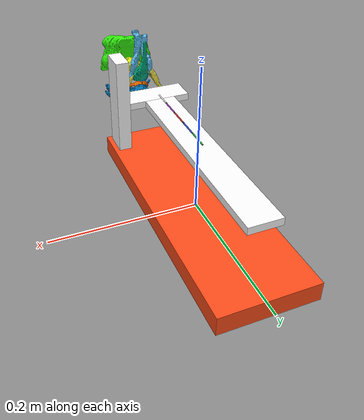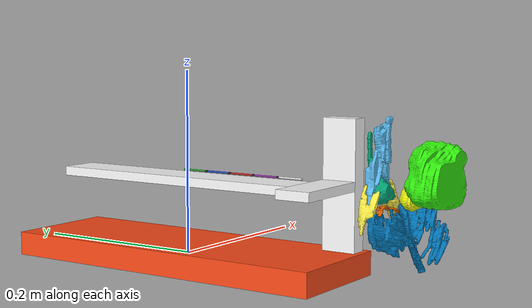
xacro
<?xml version="1.0"?>
<robot xmlns:xacro="http://www.ros.org/wiki/xacro" name="robot">

    <xacro:include filename="inertial_macros.xacro"/>
    <xacro:include filename="gazebo_tags.xacro"/>
    <xacro:include filename="prostate.xacro"/>

<!--  ***** ROBOT ASPECT  *****   -->
    <!-- colors-->
    <material name="white">
        <color rgba="1 1 1 1"/>
    </material>

    <material name="orange">
        <color rgba="1 0.3 0.1 1"/>
    </material>

    <material name="blue">
        <color rgba="0.2 0.2 1 1"/>
    </material>

    <!-- measures -->

    <xacro:property name="base_size_x_half" value="0.0655" />
    <xacro:property name="base_size_y_half" value="0.1905" />
    <xacro:property name="base_size_z" value="0.026" />
    <xacro:property name="link_z_size_x" value="0.019" />
    <xacro:property name="link_z_size_y" value="0.038" />
    <xacro:property name="link_z_size_z" value="0.14" />
    <xacro:property name="link_x_size_x" value="0.092" />
    <xacro:property name="link_x_size_y" value="0.038" />
    <xacro:property name="link_x_size_z" value="0.01" />
    <xacro:property name="link_y_size_x" value="0.045" />
    <xacro:property name="link_y_size_y" value="0.3" />
    <xacro:property name="link_y_size_z" value="0.01" />
    <xacro:property name="x_offset" value="0.007" />
    <xacro:property name="y_offset" value="0.006" />
    <xacro:property name="mass_base" value="0.4" />
    <xacro:property name="mass_x" value="0.3" />
    <xacro:property name="mass_y" value="0.3" />
    <xacro:property name="mass_z" value="0.25" />
    <!-- measures for the needle -->
    <xacro:property name="needle_mass" value="0.006" />
    <xacro:property name="link_qty" value="5"/>
	<xacro:property name="link_length" value="${needle_length/ link_qty}"/>
	<xacro:property name="link_radius" value="${needle_radius}"/>
	<xacro:property name="link_mass" value="needle_mass/link_qty"/>
	<xacro:property name="needle_radius" value="0.001" />
	<xacro:property name="needle_length" value="0.15" />

    <!-- common link for all the elements of the world -->
    <link name="dummy_link"/>

<!--  ***** NEEDLE ROBOT  *****   -->
    <joint name="dummy_joint" type="fixed">
        <parent link="dummy_link"/>
        <child link="base"/>
        <origin xyz="0 0 0" rpy="0 0 0"/>
    </joint>

    <link name="base">
        <visual>
            <geometry>
                <box size="${base_size_x_half * 2} ${base_size_y_half * 2} ${base_size_z}" />
            </geometry>
            <material name="orange" />
        </visual>
        <collision>
            <origin xyz="0 0 0" rpy="0 0 0"/>
            <geometry>
                <box size="${base_size_x_half * 2} ${base_size_y_half * 2} ${base_size_z}"/>
            </geometry>
        </collision>
        <xacro:inertial_box mass="${mass_base}" x="${base_size_x_half * 2}" y="${base_size_y_half * 2}" z="${base_size_z * 2}">
            <origin xyz="0 0 0" rpy="0 0 0"/>
        </xacro:inertial_box>
    </link>
    <joint name="base_joint" type="fixed">
        <parent link="base" />
        <child link="link_z" />
        <origin xyz="${base_size_x_half - link_z_size_x/2 - x_offset} -${base_size_y_half - link_z_size_y/2 - y_offset} 0.0" />
    </joint>

    <link name="link_z">
        <visual>
            <origin xyz="0 0 ${base_size_z/2 + link_z_size_z/2}" rpy="0.0 0.0 0.0"  />
            <geometry>
                <box size="${link_z_size_x} ${link_z_size_y} ${link_z_size_z}" />
            </geometry>
            <material name="white"/>
        </visual>
        <collision>
            <origin xyz="0 0 ${base_size_z/2 + link_z_size_z/2}" rpy="0 0 0"/>
            <geometry>
                <box size="${link_z_size_x} ${link_z_size_y} ${link_z_size_z}"/>
            </geometry>
        </collision>
        <xacro:inertial_box mass="${mass_z}" x="${link_z_size_x}" y="${link_z_size_y}" z="${link_z_size_z}">
            <origin xyz="0 0 ${base_size_z/2 + link_z_size_z/2}" rpy="0 0 0"/>
        </xacro:inertial_box>
    </link>
    <joint name="joint_zx" type="prismatic">
        <origin xyz="0 0 ${base_size_z/2 + link_z_size_z/2}" />
        <parent link="link_z" />
        <child link="link_x" />
        <axis xyz="0 0 1" />
        <limit effort="100" lower="-${base_size_z/2 + link_z_size_z/2 - link_x_size_z}" upper="${base_size_z/2 + link_z_size_z/2 - link_x_size_z}" velocity="0.1"  />
    </joint>

    <link name="link_x">
        <visual>
            <origin xyz="-${link_z_size_x/2 + link_x_size_x/2} 0 0" rpy="0 0 0"  />
            <geometry>
                <box size="${link_x_size_x} ${link_x_size_y} ${link_x_size_z}" />
            </geometry>
            <material name="white"/>
        </visual>
        <collision>
            <origin xyz="-${link_z_size_x/2 + link_x_size_x/2} 0 0" rpy="0 0 0"/>
            <geometry>
                <box size="${link_x_size_x} ${link_x_size_y} ${link_x_size_z}"/>
            </geometry>
        </collision>
        <xacro:inertial_box mass="${mass_x}" x="${link_x_size_x}" y="${link_x_size_y}" z="${link_x_size_z}">
            <origin xyz="-${link_z_size_x/2 + link_x_size_x/2} 0 0" rpy="0 0 0"/>
        </xacro:inertial_box>
    </link>
    <joint name="joint_xy" type="prismatic">
        <parent link="link_x" />
        <child link="link_y" />
        <origin xyz="-${link_z_size_x/2 + link_x_size_x/2}  0 0" rpy="0 0 0" />
        <axis xyz="1 0 0" />
        <limit effort="1000.0" lower="-${link_z_size_x/2 + link_x_size_x/2 - link_z_size_x/2}" upper="${link_z_size_x/2 + link_x_size_x/2 - link_z_size_x/2}" velocity="0.1"  />
    </joint>

    <link name="link_y">
        <visual>
            <origin xyz="0 ${link_y_size_y/2 + link_x_size_y/2}  0" />
            <geometry>
                <box size="${link_y_size_x} ${link_y_size_y} ${link_y_size_z}"  />
            </geometry>
            <material name="white"/>
        </visual>
        <collision>
            <origin xyz="0 ${link_y_size_y/2 + link_x_size_y/2}  0" rpy="0 0 0"/>
            <geometry>
                <box size="${link_y_size_x} ${link_y_size_y} ${link_y_size_z}"/>
            </geometry>
        </collision>
        <xacro:inertial_box mass="${mass_y}" x="${link_y_size_x}" y="${link_y_size_y}" z="${link_y_size_z}">
            <origin xyz="0 ${link_y_size_y/2 + link_x_size_y/2}  0" rpy="0 0 0"/>
        </xacro:inertial_box>
    </link>

	<!-- constuction of the articulated needle -->
	<link name="link_1">
        <visual>
            <geometry>
                <cylinder length="${link_length}" radius="${link_radius}"/>
            </geometry>
            <origin xyz="0 0 0" rpy="0 1.5708 1.5708"/>
        </visual>
        <collision>
            <origin xyz="0 0 0" rpy="0 1.5708 1.5708"/>
            <geometry>
                <cylinder length="${link_length}" radius="${link_radius}"/>
            </geometry>
        </collision>
        <surface>
			<friction>
			  <ode>
			<mu>100000.0</mu>
			<mu2>100000.0</mu2>
			  </ode>
			</friction>
		</surface>
        <xacro:inertial_cylinder mass="${needle_mass/link_qty}" length="${link_length}" radius="${link_radius}">
            <origin xyz="0 0 0" rpy="0 1.5708 1.5708"/>
        </xacro:inertial_cylinder>
    </link>
    <joint name="joint_needle" type="prismatic">
        <parent link="link_y"/>
        <child link="link_1"/>
        <origin xyz="0 0.15 ${link_y_size_z}" rpy="0 0 0"/>
        <axis xyz="0 1 0"/>
        <limit effort="1000" velocity="0.1" lower="-${needle_length}" upper="${needle_length/2}"/>
    </joint>
    <gazebo reference="link_1">
        <kp>1.0</kp>
        <kd>1.0</kd>
        <mu1>1000.0</mu1>
        <mu2>1000.0</mu2>
        <material>Gazebo/Green</material>
        <self_collide>1</self_collide>
    </gazebo>

    <xacro:macro name="needle_link" params="base_name parent_name colour">

        <link name="${base_name}_aux">
            <visual>
			    <geometry>
			        <cylinder length="${link_length * 1/10}" radius="${link_radius}"/>
			    </geometry>
			    <origin xyz="0 0 0" rpy="0 1.5708 1.5708"/>
			</visual>
			<collision>
			    <origin xyz="0 0 0" rpy="0 1.5708 1.5708"/>
			    <geometry>
			        <cylinder length="${link_length}" radius="${link_radius}"/>
			    </geometry>
			</collision>
			<surface>
				<friction>
				  <ode>
				    <mu>100000.0</mu>
				    <mu2>100000.0</mu2>
				  </ode>
				</friction>
			</surface>
			<xacro:inertial_cylinder mass="${needle_mass/link_qty}" length="${link_length}" radius="${link_radius}">
			    <origin xyz="0 0 0" rpy="0 1.5708 1.5708"/>
			</xacro:inertial_cylinder>
		</link>

    	<gazebo reference="${base_name}_aux">
    		<kp>1.0</kp>
            <kd>1.0</kd>
            <mu1>1000.0</mu1>
            <mu2>1000.0</mu2>
            <material>Gazebo/Black</material>
            <self_collide>1</self_collide>
        </gazebo>

        <link name="${base_name}">
     	    <visual>
	        <geometry>
	            <cylinder length="${link_length * 9/10}" radius="${link_radius}"/>
	        </geometry>
	        <origin xyz="0 0 0" rpy="0 1.5708 1.5708"/>
	    </visual>
	    <collision>
	        <origin xyz="0 0 0" rpy="0 1.5708 1.5708"/>
	        <geometry>
	            <cylinder length="${link_length}" radius="${link_radius}"/>
	        </geometry>
	    </collision>
	    <surface>
			<friction>
		      <ode>
		        <mu>100000.0</mu>
		        <mu2>100000.0</mu2>
		      </ode>
			</friction>
		</surface>
	    <xacro:inertial_cylinder mass="${needle_mass/link_qty}" length="${link_length}" radius="${link_radius}">
	        <origin xyz="0 0 0" rpy="0 1.5708 1.5708"/>
	    </xacro:inertial_cylinder>
    	</link>

    	<gazebo reference="${base_name}">
    		<kp>1.0</kp>
            <kd>1.0</kd>
            <mu1>1000.0</mu1>
            <mu2>1000.0</mu2>
            <material>Gazebo/${colour}</material>
            <self_collide>1</self_collide>
        </gazebo>

        <joint name="${base_name}_aux_joint" type="revolute">
            <parent link="${parent_name}"/>
        	<child link="${base_name}_aux"/>
            <origin xyz="0 -${link_length/2} 0" rpy="0 0 0"/>
            <limit lower="-0.04" upper="0.04" effort="100.0" velocity="0.1"/>
            <axis xyz="1 0 0"/>
    	</joint>

        <joint name="${base_name}_joint" type="revolute">
    	    <parent link="${base_name}_aux"/>
        	<child link="${base_name}"/>
            <origin xyz="0 -${link_length/2} 0" rpy="0 0 0"/>
            <limit lower="-0.04" upper="0.04" effort="100.0" velocity="0.1"/>
            <axis xyz="0 1 0"/>
    	</joint>

    	<transmission name="tran${base_name}_aux">
            <type>transmission_interface/SimpleTransmission</type>
            <joint name="${base_name}_aux_joint">
                <hardwareInterface>EffortJointInterface</hardwareInterface>
            </joint>
            <actuator name="motor${base_name}_aux">
                <hardwareInterface>EffortJointInterface</hardwareInterface>
                <mechanicalReduction>1</mechanicalReduction>
            </actuator>
        </transmission>

        <transmission name="tran${base_name}">
            <type>transmission_interface/SimpleTransmission</type>
            <joint name="${base_name}_joint">
                <hardwareInterface>EffortJointInterface</hardwareInterface>
            </joint>
            <actuator name="motor${base_name}">
                <hardwareInterface>EffortJointInterface</hardwareInterface>
                <mechanicalReduction>1</mechanicalReduction>
            </actuator>
        </transmission>

    </xacro:macro>

    <!-- initialisation of the needle-->
    <xacro:needle_link base_name="link_2" parent_name="link_1" colour="Blue"/>
    <xacro:needle_link base_name="link_3" parent_name="link_2" colour="Red"/>
    <xacro:needle_link base_name="link_4" parent_name="link_3" colour="Purple"/>
    <xacro:needle_link base_name="link_5" parent_name="link_4" colour="White"/>

<!--  ***** ROS2 GAZEBO CONTROL PACKAGE  *****   -->
    <ros2_control name="GazeboSystem" type="system">
        <hardware>
            <plugin>gazebo_ros2_control/GazeboSystem</plugin>
        </hardware>
        <joint name="joint_zx">
            <command_interface name="position">
                <param name="min">-${base_size_z/2 + link_z_size_z/2 - link_x_size_z}"</param>
                <param name="max">"${base_size_z/2 + link_z_size_z/2 - link_x_size_z}"</param>
            </command_interface>
            <state_interface name="position"/>
            <state_interface name="velocity"/>
        </joint>
        <joint name="joint_xy">
            <command_interface name="position">
                <param name="min">-${link_z_size_x/2 + link_x_size_x/2 - link_z_size_x/2}</param>
                <param name="max">${link_z_size_x/2 + link_x_size_x/2 - link_z_size_x/2}</param>
            </command_interface>
            <state_interface name="position"/> <!--what I want to broadcast-->
            <state_interface name="velocity"/>
        </joint>
        <joint name="joint_needle">
            <command_interface name="position">
                <param name="min">-${needle_length}</param>
                <param name="max">${needle_length/2}</param>
            </command_interface>
            <state_interface name="position"/>
            <state_interface name="velocity"/>
        </joint>
        <joint name="link_2_aux_joint">
            <command_interface name="position">
                <param name="min">-0.04</param>
                <param name="max">0.04</param>
            </command_interface>
            <state_interface name="position"/>
            <state_interface name="velocity"/>
        </joint>
        <joint name="link_2_joint">
            <command_interface name="position">
                <param name="min">-0.04</param>
                <param name="max">0.04</param>
            </command_interface>
            <state_interface name="position"/>
            <state_interface name="velocity"/>
        </joint>
        <joint name="link_3_aux_joint">
            <command_interface name="position">
                <param name="min">-0.04</param>
                <param name="max">0.04</param>
            </command_interface>
            <state_interface name="position"/>
            <state_interface name="velocity"/>
        </joint>
        <joint name="link_3_joint">
            <command_interface name="position">
                <param name="min">-0.04</param>
                <param name="max">0.04</param>
            </command_interface>
            <state_interface name="position"/>
            <state_interface name="velocity"/>
        </joint>
        <joint name="link_4_aux_joint">
            <command_interface name="position">
                <param name="min">-0.04</param>
                <param name="max">0.04</param>
            </command_interface>
            <state_interface name="position"/>
            <state_interface name="velocity"/>
        </joint>
        <joint name="link_4_joint">
            <command_interface name="position">
                <param name="min">-0.04</param>
                <param name="max">0.04</param>
            </command_interface>
            <state_interface name="position"/>
            <state_interface name="velocity"/>
        </joint>
        <joint name="link_5_aux_joint">
            <command_interface name="position">
                <param name="min">-0.04</param>
                <param name="max">0.04</param>
            </command_interface>
            <state_interface name="position"/>
            <state_interface name="velocity"/>
        </joint>
        <joint name="link_5_joint">
            <command_interface name="position">
                <param name="min">-0.04</param>
                <param name="max">0.04</param>
            </command_interface>
            <state_interface name="position"/>
            <state_interface name="velocity"/>
        </joint>
    </ros2_control>

    <gazebo>
        <plugin filename="libgazebo_ros2_control.so" name="gazebo_ros2_control">
            <parameters>$(find my_bot)/config/controller.yaml</parameters>
        </plugin>
    </gazebo>

</robot>

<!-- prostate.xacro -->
<robot xmlns:xacro="http://www.ros.org/wiki/xacro">

    <joint name="dummy_joint_prostate" type="fixed">
        <parent link="dummy_link"/>
        <child link="prostate"/>
        <origin xyz="0 -0.25 0.08" rpy="1.5708 3.14 0.0"/>
    </joint>
	<link name="prostate">
		  <collision>
			<geometry>
			  <box size="0.01 0.01 0.01"/>
			</geometry>
		  </collision>
		  <visual>
			<origin rpy="0 0 0" xyz="0 0 0" />
			<geometry>
			  <mesh filename="package://my_bot/meshes/prostate.stl" scale="0.001 0.001 0.001"/>
			</geometry>
			<material name="yellow" />
		  </visual>
	</link>

	<joint name="dummy_joint_3" type="fixed">
        <parent link="dummy_link"/>
        <child link="3"/>
        <origin xyz="0 -0.25 0.08" rpy="1.5708 3.14 0.0"/>
    </joint>
	<link name="3">
		  <collision>
			<geometry>
			  <box size="0.01 0.01 0.01"/>
			</geometry>
		  </collision>
		  <visual>
			<origin rpy="0 0 0" xyz="0 0 0" />
			<geometry>
			  <mesh filename="package://my_bot/meshes/3.stl" scale="0.001 0.001 0.001"/>
			</geometry>
		  </visual>
	</link>

	<joint name="dummy_joint_4" type="fixed">
        <parent link="dummy_link"/>
        <child link="4"/>
        <origin xyz="0 -0.25 0.08" rpy="1.5708 3.14 0.0"/>
    </joint>
	<link name="4">
		  <collision>
			<geometry>
			  <box size="0.01 0.01 0.01"/>
			</geometry>
		  </collision>
		  <visual>
			<origin rpy="0 0 0" xyz="0 0 0" />
			<geometry>
			  <mesh filename="package://my_bot/meshes/4.stl" scale="0.001 0.001 0.001"/>
			</geometry>
		  </visual>
	</link>

	<joint name="dummy_joint_5" type="fixed">
        <parent link="dummy_link"/>
        <child link="5"/>
        <origin xyz="0 -0.25 0.08" rpy="1.5708 3.14 0.0"/>
    </joint>
	<link name="5">
		  <collision>
			<geometry>
			  <box size="0.01 0.01 0.01"/>
			</geometry>
		  </collision>
		  <visual>
			<origin rpy="0 0 0" xyz="0 0 0" />
			<geometry>
			  <mesh filename="package://my_bot/meshes/5.stl" scale="0.001 0.001 0.001"/>
			</geometry>
		  </visual>
	</link>

	<joint name="dummy_joint_7" type="fixed">
        <parent link="dummy_link"/>
        <child link="7"/>
        <origin xyz="0 -0.25 0.08" rpy="1.5708 3.14 0.0"/>
    </joint>
	<link name="7">
		  <collision>
			<geometry>
			  <box size="0.01 0.01 0.01"/>
			</geometry>
		  </collision>
		  <visual>
			<origin rpy="0 0 0" xyz="0 0 0" />
			<geometry>
			  <mesh filename="package://my_bot/meshes/7.stl" scale="0.001 0.001 0.001"/>
			</geometry>
		  </visual>
	</link>

	<joint name="dummy_joint_9" type="fixed">
        <parent link="dummy_link"/>
        <child link="9"/>
        <origin xyz="0 -0.25 0.08" rpy="1.5708 3.14 0.0"/>
    </joint>
	<link name="9">
		  <collision>
			<geometry>
			  <box size="0.01 0.01 0.01"/>
			</geometry>
		  </collision>
		  <visual>
			<origin rpy="0 0 0" xyz="0 0 0" />
			<geometry>
			  <mesh filename="package://my_bot/meshes/9.stl" scale="0.001 0.001 0.001"/>
			</geometry>
		  </visual>
	</link>

	<joint name="dummy_joint_bladder" type="fixed">
        <parent link="dummy_link"/>
        <child link="bladder"/>
        <origin xyz="0 -0.25 0.08" rpy="1.5708 3.14 0.0"/>
    </joint>
	<link name="bladder">
		  <collision>
			<geometry>
			  <box size="0.01 0.01 0.01"/>
			</geometry>
		  </collision>
		  <visual>
			<origin rpy="0 0 0" xyz="0 0 0" />
			<geometry>
			  <mesh filename="package://my_bot/meshes/bladder.stl" scale="0.001 0.001 0.001"/>
			</geometry>
			<material name="green" />
		  </visual>
	</link>

   <gazebo reference="prostate">
        <material>Gazebo/yellow</material>
    </gazebo>
    <gazebo reference="bladder">
        <material>Gazebo/Green</material>
    </gazebo>

    <material name="yellow">
        <color rgba="0.88 0.917 0.047 1"/>
    </material>
    <material name="green">
        <color rgba="0.19 0.917 0.047 1"/>
    </material>
</robot>
